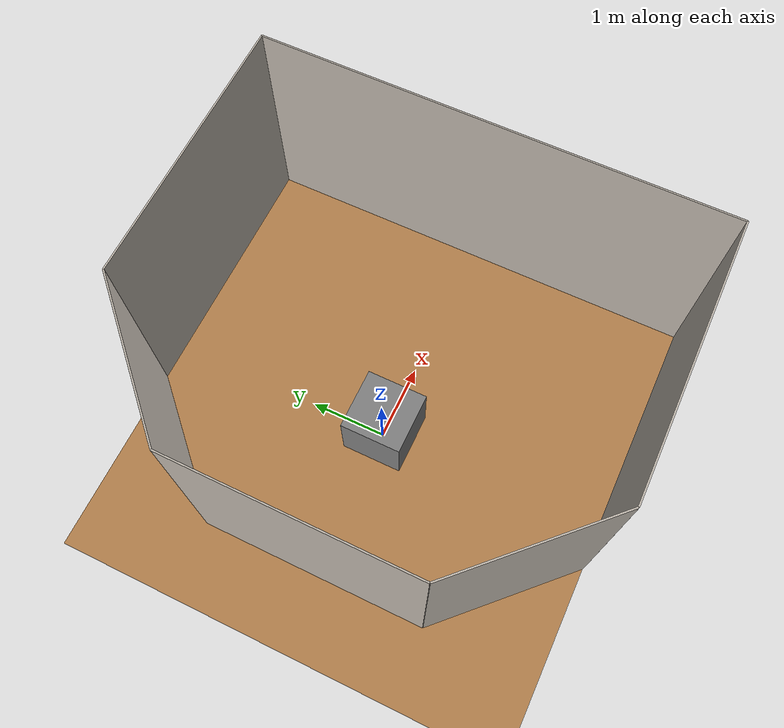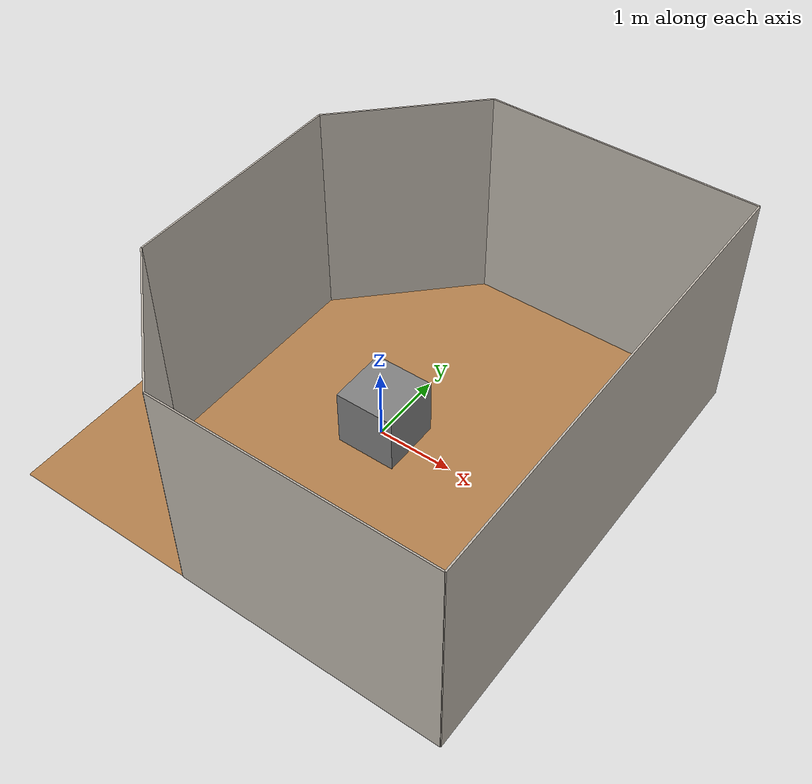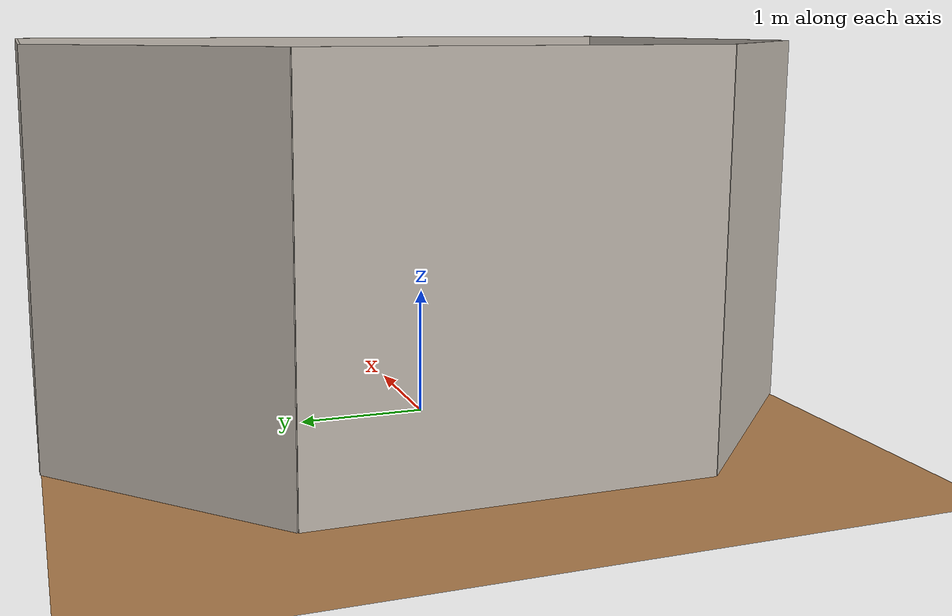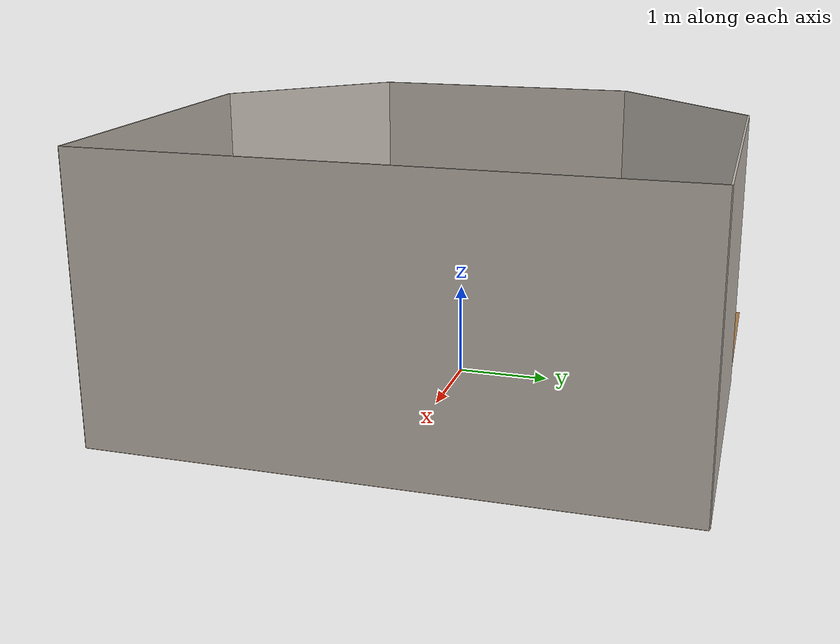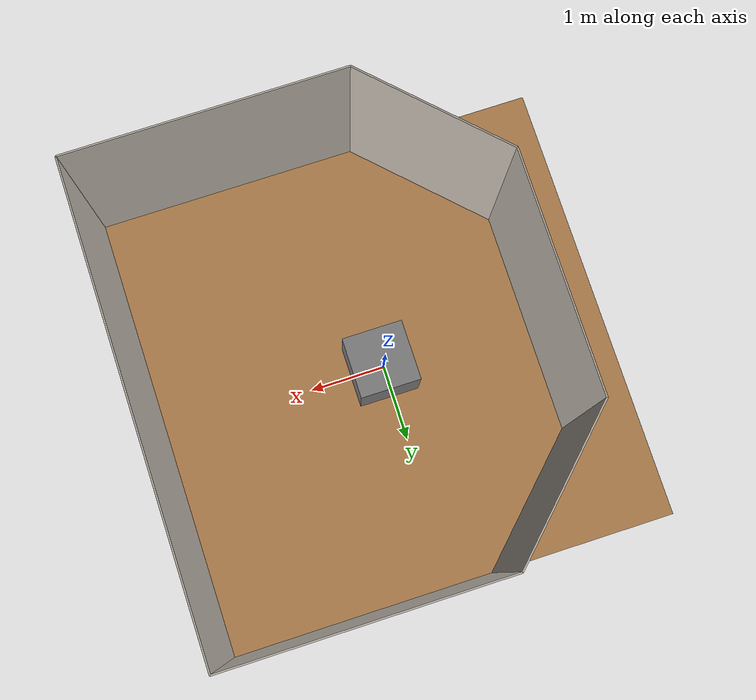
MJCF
<mujoco model="cluttered_cabinet_arena">
  <asset>
    <texture builtin="gradient" height="256" rgb1=".9 .9 1." rgb2=".2 .3 .4" type="skybox" width="256"/>
    <texture file="../textures/wood-tiles.png" type="2d" name="texplane"/>
    <material name="floorplane" reflectance="0.01" shininess="0.0" specular="0.0" texrepeat="2 2" texture="texplane" texuniform="true"/>
    <!-- ceramic table texture and material-->
    <texture file="../textures/ceramic.png" type="cube" name="tex-ceramic"/>
    <material name="table_ceramic" reflectance="0.0" shininess="0.0" specular="0.2" texrepeat="1 1" texture="tex-ceramic" />
    <!-- steel legs -->
    <texture file="../textures/steel-brushed.png" type="cube" name="tex-steel-brushed"/>
    <material name="table_legs_metal" reflectance="0.8" shininess="0.8" texrepeat="1 1" texture="tex-steel-brushed" />
    <!-- plaster walls -->
    <texture file="../textures/cream-plaster.png" type="2d" name="tex-cream-plaster"/>
    <material name="walls_mat" reflectance="0.0" shininess="0.1" specular="0.1" texrepeat="3 3" texture="tex-cream-plaster" texuniform="true" />
    <!-- added table texture and material for domain randomization -->
    <texture  name="textable" builtin="flat" height="512" width="512" rgb1="0.5 0.5 0.5" rgb2="0.5 0.5 0.5"/>
    <material name="table_mat" texture="textable" />

    <mesh name="cabinet" file="meshes/kitchen_cabinet.stl" />

  </asset>
  <worldbody>
    <!-- Floor -->
    <geom condim="3" material="floorplane" name="floor" pos="0 0 0" size="3 3 .125" type="plane"/>
    <!-- Walls (visual only) -->
    <geom pos="-1.25 2.25 1.5" quat="0.6532815 0.6532815 0.2705981 0.2705981" size="1.06 1.5 0.01" type="box" conaffinity="0" contype="0" group="1" name="wall_leftcorner_visual" material="walls_mat"/>
    <geom pos="-1.25 -2.25 1.5" quat="0.6532815 0.6532815 -0.2705981 -0.2705981" size="1.06 1.5 0.01" type="box" conaffinity="0" contype="0" group="1" name="wall_rightcorner_visual" material="walls_mat"/>
    <geom pos="1.25 3 1.5" quat="0.7071 0.7071 0 0" size="1.75 1.5 0.01" type="box" conaffinity="0" contype="0" group="1" name="wall_left_visual" material="walls_mat"/>
    <geom pos="1.25 -3 1.5" quat="0.7071 -0.7071 0 0" size="1.75 1.5 0.01" type="box" conaffinity="0" contype="0" group="1" name="wall_right_visual" material="walls_mat"/>
    <geom pos="-2 0 1.5" quat="0.5 0.5 0.5 0.5" size="1.5 1.5 0.01" type="box" conaffinity="0" contype="0" group="1" name="wall_rear_visual" material="walls_mat"/>
    <geom pos="3 0 1.5" quat="0.5 0.5 -0.5 -0.5" size="3 1.5 0.01" type="box" conaffinity="0" contype="0" group="1" name="wall_front_visual" material="walls_mat"/>
    <!-- Table body -->
    <body name="table" pos="0 0 0.4">
      <geom pos="0.05 0 0" size="0.4 0.4 0.4" type="box" group="0" name="table_collision" friction="0.1 0.005 0.0001" solimp="0.9 0.95 0.001 0.5 2" solmix="10000" solref="0.004 1" priority="1"/>
      <geom pos="0.05 0 0" size="0.4 0.4 0.4" type="box" conaffinity="0" contype="0" group="1" name="table_visual" material="table_ceramic"/>

      <!-- Cabinet Sides (visual only) SHORTER -->
      <geom pos="0.05 0.32 0.165" size="0.19 0.01 0.195" type="box" conaffinity="0" contype="0" group="1" name="cabinet_visual" material="table_ceramic"/>
      <geom pos="0.05 -0.32 0.165" size="0.19 0.01 0.195" type="box" conaffinity="0" contype="0" group="1" name="cabinet_visual1" material="table_ceramic"/>
      <!-- Cabinet Top (visual only) -->
      <geom pos="0.05 0 0.35" size="0.19 0.33 0.01" type="box" conaffinity="0" contype="0" group="1" name="cabinet_visual2" material="table_ceramic" rgba="1 1 1 0.4"/>
      <!-- Cabinet Back (visual only) -->
      <geom pos="0.23 0 0.165" size="0.01 0.33 0.195" type="box" conaffinity="0" contype="0" group="1" name="cabinet_visual3" material="table_ceramic"/>

      <!-- Obstacles (visual only) -->
      <geom pos="-0.09 0.21 0.15" size="0.044 0.092 0.182" type="box" conaffinity="0" contype="0" group="1" name="obstacle_visual1" rgba="1 0 0 1"/>
      <geom pos="-0.09 -0.21 0.15" size="0.044 0.092 0.182" type="box" conaffinity="0" contype="0" group="1" name="obstacle_visual2" rgba="1 0 0 1"/>

      <!-- Goal zone (visual only) -->
      <geom pos="0.06 0.0 0.15" size="0.05 0.12 0.182" type="box" conaffinity="0" contype="0" group="1" name="goal_zone_visual" rgba="0.5 0 0.5 0.2"/>

       <!-- Cabinet Sides (collision only) -->
      <geom pos="0.05 0.32 0.165" size="0.19 0.01 0.195" type="box" name="cabinet_collision" solimp="0.9 0.95 0.001 0.5 2" solmix="10000" solref="0.00001 2" friction="0.3 0.005 0.0001" priority="1"/>
      <geom pos="0.05 -0.32 0.165" size="0.19 0.01 0.195" type="box" name="cabinet_collision1" solimp="0.9 0.95 0.001 0.5 2" solmix="10000" solref="0.00001 2" friction="0.3 0.005 0.0001" priority="1"/>
      <!-- Cabinet Top (collision only) -->
      <geom pos="0.05 0 0.35" size="0.19 0.33 0.01" type="box" name="cabinet_collision2" solimp="0.9 0.95 0.001 0.5 2" solmix="10000" solref="0.00001 2" friction="0.3 0.005 0.0001" priority="1"/>
      <!-- Cabinet Back (collision only) -->
      <geom pos="0.23 0 0.165" size="0.01 0.33 0.195" type="box" name="cabinet_collision3" solimp="0.9 0.95 0.001 0.5 2" solmix="10000" solref="0.00001 2" friction="0.3 0.005 0.0001" priority="1"/>

      <!-- Obstacles (collision only) -->
      <geom pos="-0.09 0.21 0.15" size="0.044 0.092 0.182"  type="box" name="obstacle_collision1" solimp="0.9 0.95 0.001 0.5 2" solmix="10000" solref="0.00001 2" friction="0.3 0.005 0.0001" priority="1"/>
      <geom pos="-0.09 -0.21 0.15" size="0.044 0.092 0.182" type="box" name="obstacle_collision2" solimp="0.9 0.95 0.001 0.5 2" solmix="10000" solref="0.00001 2" friction="0.3 0.005 0.0001" priority="1"/>

      <site pos="0 0 0.4" name="table_top" size="0.001 0.001 0.001" rgba="0 0 0 0"/>
      <!-- Legs (visual only) -->
      <geom pos="0.05 0 0" size="0.05 0.1" type="cylinder" conaffinity="0" contype="0" group="1" name="table_leg1_visual" material="table_legs_metal"/>
      <geom pos="0.05 0 0" size="0.05 0.1" type="cylinder" conaffinity="0" contype="0" group="1" name="table_leg2_visual" material="table_legs_metal"/>
      <geom pos="0.05 0 0" size="0.05 0.1" type="cylinder" conaffinity="0" contype="0" group="1" name="table_leg3_visual" material="table_legs_metal"/>
      <geom pos="0.05 0 0" size="0.05 0.1" type="cylinder" conaffinity="0" contype="0" group="1" name="table_leg4_visual" material="table_legs_metal"/>
    </body>

    <light name="light1" diffuse=".8 .8 .8" dir="0 -.15 -1" directional="false" pos="-0.05 0 0.29" specular="0.3 0.3 0.3" castshadow="true"/>
    <light name="light2" diffuse=".8 .8 .8" dir="0 -.15 -1" directional="false" pos="0.05 0 0.25" specular="0.3 0.3 0.3" castshadow="true"/>
    <light name="undercabinetlights" diffuse=".8 .8 .8" dir=".4 0 -.6" directional="false" pos="-0. 0 12.8" specular="0.3 0.3 0.3" castshadow="true"/>
    <!-- front view -->
    <!-- bird view -->
    <!-- agent view -->
    <camera mode="fixed" name="agentview" pos="0.5 0 1.35" quat="0.653 0.271 0.271 0.653"/>
    <!-- side view -->
    <camera mode="fixed" name="sideview" pos="-0.05651774593317116 1.2761224129427358 2" quat="0.009905065491771751 0.006877963156909582 0.5912228352893879 0.806418094001364" />
    <!-- cabinet view -->
    <camera mode="fixed" name="cabinetview" pos="0.2 0.0 2.9" quat="0.7071 0 0 -0.7071" />
    <!-- bird view -->
  </worldbody>
</mujoco>
